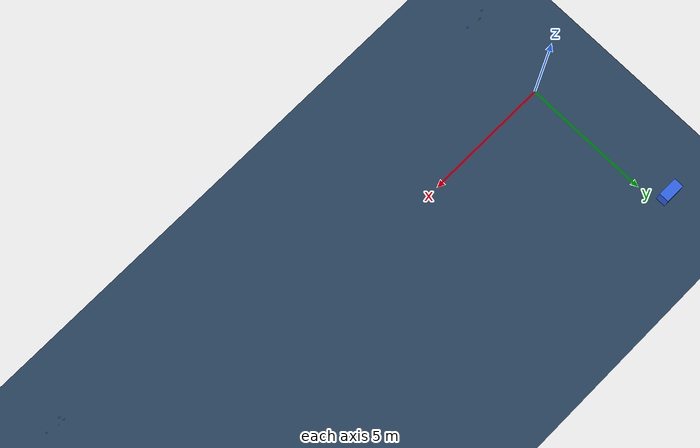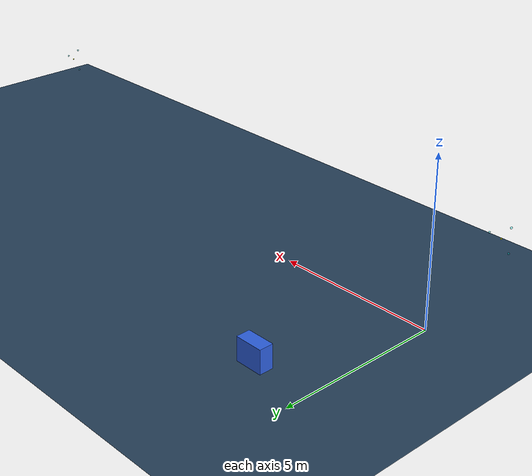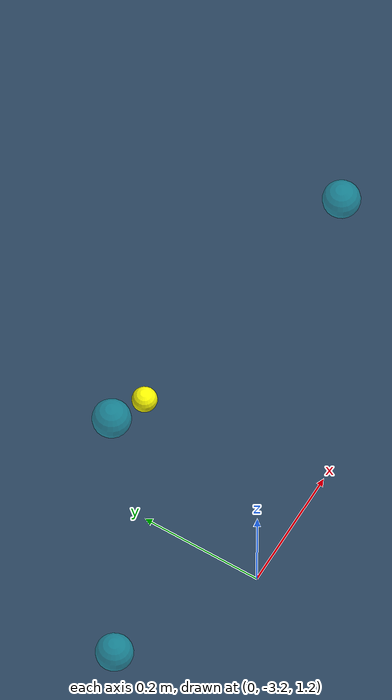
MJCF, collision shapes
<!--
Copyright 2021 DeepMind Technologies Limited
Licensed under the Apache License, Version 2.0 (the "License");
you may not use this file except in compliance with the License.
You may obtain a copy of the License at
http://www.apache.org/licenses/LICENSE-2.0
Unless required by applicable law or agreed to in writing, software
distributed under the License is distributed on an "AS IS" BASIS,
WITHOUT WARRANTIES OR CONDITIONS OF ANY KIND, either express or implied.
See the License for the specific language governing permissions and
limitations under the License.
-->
<mujoco model="3CamNodeParallel_DJIMavic">
  <option timestep="0.005"/>

  <visual>
    <headlight ambient="0.35 0.35 0.35" diffuse="0.65 0.65 0.65" specular="0.25 0.25 0.25"/>
    <map force="0.1" zfar="30"/>
    <rgba haze="0.15 0.25 0.35 1"/>
    <global offwidth="2560" offheight="1440" elevation="-20" azimuth="120"/>
    <quality offsamples="0"/>
  </visual>

  <statistic center="0 0 0.7"/>

  <asset>
    <texture type="skybox" builtin="gradient" rgb1=".3 .5 .7" rgb2="0 0 0" width="32" height="512"/>
    <texture name="grid" type="2d" builtin="checker" width="512" height="512" rgb1=".1 .2 .3" rgb2=".2 .3 .4"/>
    <material name="grid" texture="grid" texrepeat="1 1" texuniform="true" reflectance=".2"/>
    <mesh name="dji_mavic_drone" file="../../../models/DJI Mavic Air Drone/DJI_mavic_air_drone.obj" scale="0.02 0.02 0.02"/>
    <material name="dji_mavic_mat" rgba="0.92 0.92 0.95 1" specular="0.4" shininess="0.2"/>
  </asset>

  <worldbody>
    <geom name="floor" size="0 0 .05" type="plane" material="grid" condim="3"/>
    <light name="top" pos="0 0 6" diffuse="0.9 0.9 0.9" specular="0.15 0.15 0.15"/>
    <light name="fill" pos="0 -6 4" diffuse="0.75 0.75 0.75" specular="0.12 0.12 0.12"/>

    <body name="node01" pos="0 -3 1.6">
      <site name="node01_origin" pos="0 0 0" size="0.02" rgba="1 1 0 1"/>
      <camera name="node01_cam0" pos="0.45 0 0.0" xyaxes="1 0 0  0 0 1" fovy="60"/>
      <camera name="node01_cam1" pos="-0.225 0 0.389711" xyaxes="1 0 0  0 0 1" fovy="60"/>
      <camera name="node01_cam2" pos="-0.225 0 -0.389711" xyaxes="1 0 0  0 0 1" fovy="60"/>
      <geom name="node01_cam0_marker" type="sphere" pos="0.45 -0.08 0.0" size="0.03" rgba="0 1 1 0.35" contype="0" conaffinity="0"/>
      <geom name="node01_cam1_marker" type="sphere" pos="-0.225 -0.08 0.389711" size="0.03" rgba="0 1 1 0.35" contype="0" conaffinity="0"/>
      <geom name="node01_cam2_marker" type="sphere" pos="-0.225 -0.08 -0.389711" size="0.03" rgba="0 1 1 0.35" contype="0" conaffinity="0"/>
    </body>

    <body name="node02" pos="20 -3 1.6">
      <site name="node02_origin" pos="0 0 0" size="0.02" rgba="1 1 0 1"/>
      <camera name="node02_cam0" pos="0.45 0 0.0" xyaxes="1 0 0  0 0 1" fovy="60"/>
      <camera name="node02_cam1" pos="-0.225 0 0.389711" xyaxes="1 0 0  0 0 1" fovy="60"/>
      <camera name="node02_cam2" pos="-0.225 0 -0.389711" xyaxes="1 0 0  0 0 1" fovy="60"/>
      <geom name="node02_cam0_marker" type="sphere" pos="0.45 -0.08 0.0" size="0.03" rgba="0 1 1 0.35" contype="0" conaffinity="0"/>
      <geom name="node02_cam1_marker" type="sphere" pos="-0.225 -0.08 0.389711" size="0.03" rgba="0 1 1 0.35" contype="0" conaffinity="0"/>
      <geom name="node02_cam2_marker" type="sphere" pos="-0.225 -0.08 -0.389711" size="0.03" rgba="0 1 1 0.35" contype="0" conaffinity="0"/>
    </body>

    <body name="target" pos="0 6 2.0">
      <freejoint/>
      <inertial pos="0 0 0" mass="1" diaginertia="0.1 0.1 0.1"/>
      <geom name="target_dji_mavic_visual" type="mesh" mesh="dji_mavic_drone" quat="0.7071068 0.7071068 0 0" material="dji_mavic_mat" rgba="1 1 1 1" contype="0" conaffinity="0" group="1"/>
      <geom name="target_dji_mavic_collision" type="box" size="0.38 0.19 0.32" rgba="0.18 0.38 0.88 0.15" contype="1" conaffinity="1" group="3"/>
    </body>
  </worldbody>
</mujoco>
